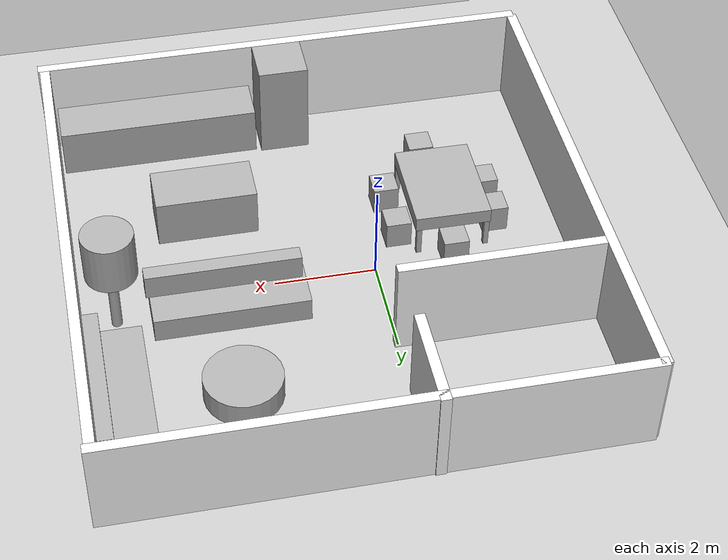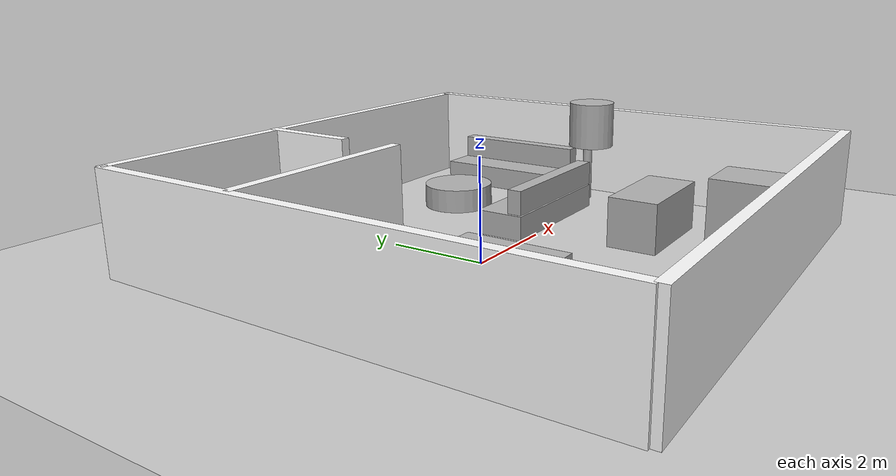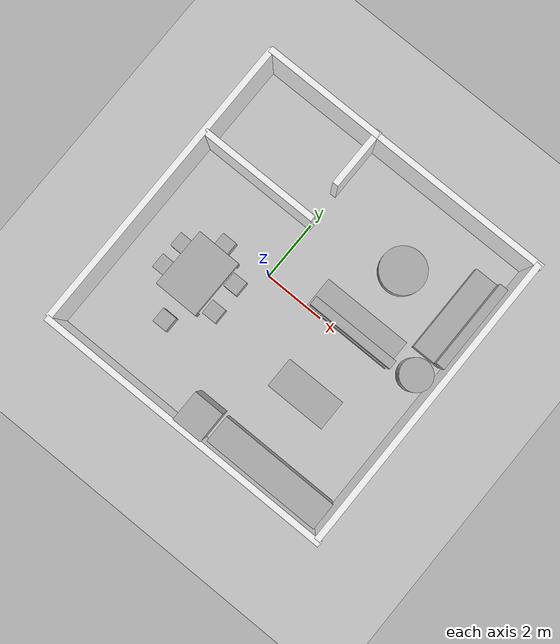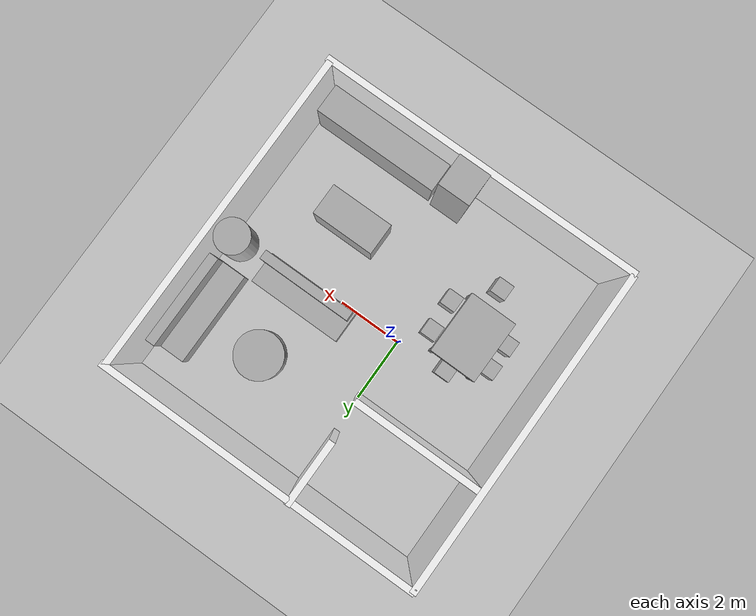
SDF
<sdf version='1.10'>
  <world name='map'>

    <physics name='1ms' type='ignored'>
      <max_step_size>0.001</max_step_size>
      <real_time_factor>1</real_time_factor>
      <real_time_update_rate>1000</real_time_update_rate>
    </physics>
    <plugin filename="gz-sim-sensors-system" name="gz::sim::systems::Sensors">
      <render_engine>ogre2</render_engine>
    </plugin>
    <plugin name='gz::sim::systems::Physics' filename='gz-sim-physics-system'/>
    <plugin name='gz::sim::systems::UserCommands' filename='gz-sim-user-commands-system'/>
    <plugin name='gz::sim::systems::SceneBroadcaster' filename='gz-sim-scene-broadcaster-system'/>
    <gravity>0 0 -9.8000000000000007</gravity>
    <magnetic_field>5.5644999999999998e-06 2.2875799999999999e-05 -4.2388400000000002e-05</magnetic_field>
    <atmosphere type='adiabatic'/>
    <scene>
      <ambient>0.400000006 0.400000006 0.400000006 1</ambient>
      <background>0.699999988 0.699999988 0.699999988 1</background>
      <shadows>true</shadows>
    </scene>
    <model name='ground_plane'>
      <static>true</static>
      <link name='link'>
        <collision name='collision'>
          <geometry>
            <plane>
              <normal>0 0 1</normal>
              <size>100 100</size>
            </plane>
          </geometry>
          <surface>
            <friction>
              <ode/>
            </friction>
            <bounce/>
            <contact/>
          </surface>
        </collision>
        <visual name='visual'>
          <geometry>
            <plane>
              <normal>0 0 1</normal>
              <size>100 100</size>
            </plane>
          </geometry>
          <material>
            <ambient>0.800000012 0.800000012 0.800000012 1</ambient>
            <diffuse>0.800000012 0.800000012 0.800000012 1</diffuse>
            <specular>0.800000012 0.800000012 0.800000012 1</specular>
          </material>
        </visual>
        <pose>0 0 0 0 0 0</pose>
        <inertial>
          <pose>0 0 0 0 0 0</pose>
          <mass>1</mass>
          <inertia>
            <ixx>1</ixx>
            <ixy>0</ixy>
            <ixz>0</ixz>
            <iyy>1</iyy>
            <iyz>0</iyz>
            <izz>1</izz>
          </inertia>
        </inertial>
        <enable_wind>false</enable_wind>
      </link>
      <pose>0 0 0 0 0 0</pose>
      <self_collide>false</self_collide>
    </model>
    <model name='wall_1'>
      <static>true</static>
      <link name='link'>
        <collision name='collision'>
          <geometry>
            <box>
              <size>10 0.20000000000000001 2</size>
            </box>
          </geometry>
          <surface>
            <friction>
              <ode/>
            </friction>
            <bounce/>
            <contact/>
          </surface>
        </collision>
        <visual name='visual'>
          <geometry>
            <box>
              <size>10 0.20000000000000001 2</size>
            </box>
          </geometry>
          <material>
            <ambient>1 1 1 1</ambient>
          </material>
        </visual>
        <pose>0 0 0 0 0 0</pose>
        <enable_wind>false</enable_wind>
        <inertial>
          <pose>0 0 0 0 0 0</pose>
          <mass>1</mass>
          <inertia>
            <ixx>1</ixx>
            <ixy>0</ixy>
            <ixz>0</ixz>
            <iyy>1</iyy>
            <iyz>0</iyz>
            <izz>1</izz>
          </inertia>
        </inertial>
      </link>
      <pose>1 5 1 0 0 0</pose>
      <self_collide>false</self_collide>
    </model>
    <model name='wall_2'>
      <static>true</static>
      <link name='link'>
        <collision name='collision'>
          <geometry>
            <box>
              <size>10 0.20000000000000001 2</size>
            </box>
          </geometry>
          <surface>
            <friction>
              <ode/>
            </friction>
            <bounce/>
            <contact/>
          </surface>
        </collision>
        <visual name='visual'>
          <geometry>
            <box>
              <size>10 0.20000000000000001 2</size>
            </box>
          </geometry>
          <material>
            <ambient>1 1 1 1</ambient>
          </material>
        </visual>
        <pose>0 0 0 0 0 0</pose>
        <enable_wind>false</enable_wind>
        <inertial>
          <pose>0 0 0 0 0 0</pose>
          <mass>1</mass>
          <inertia>
            <ixx>1</ixx>
            <ixy>0</ixy>
            <ixz>0</ixz>
            <iyy>1</iyy>
            <iyz>0</iyz>
            <izz>1</izz>
          </inertia>
        </inertial>
      </link>
      <pose>1 -5 1 0 0 0</pose>
      <self_collide>false</self_collide>
    </model>
    <model name='wall_3'>
      <static>true</static>
      <link name='link'>
        <collision name='collision'>
          <geometry>
            <box>
              <size>10 0.20000000000000001 2</size>
            </box>
          </geometry>
          <surface>
            <friction>
              <ode/>
            </friction>
            <bounce/>
            <contact/>
          </surface>
        </collision>
        <visual name='visual'>
          <geometry>
            <box>
              <size>10 0.20000000000000001 2</size>
            </box>
          </geometry>
          <material>
            <ambient>1 1 1 1</ambient>
          </material>
        </visual>
        <pose>0 0 0 0 0 0</pose>
        <enable_wind>false</enable_wind>
        <inertial>
          <pose>0 0 0 0 0 0</pose>
          <mass>1</mass>
          <inertia>
            <ixx>1</ixx>
            <ixy>0</ixy>
            <ixz>0</ixz>
            <iyy>1</iyy>
            <iyz>0</iyz>
            <izz>1</izz>
          </inertia>
        </inertial>
      </link>
      <pose>-3.9541664123535156 0.043944545090198517 1 0 0 1.5708000357176291</pose>
      <self_collide>false</self_collide>
    </model>
    <model name='wall_4'>
      <static>true</static>
      <link name='link'>
        <collision name='collision'>
          <geometry>
            <box>
              <size>10 0.20000000000000001 2</size>
            </box>
          </geometry>
          <surface>
            <friction>
              <ode/>
            </friction>
            <bounce/>
            <contact/>
          </surface>
        </collision>
        <visual name='visual'>
          <geometry>
            <box>
              <size>10 0.20000000000000001 2</size>
            </box>
          </geometry>
          <material>
            <ambient>1 1 1 1</ambient>
          </material>
        </visual>
        <pose>0 0 0 0 0 0</pose>
        <enable_wind>false</enable_wind>
        <inertial>
          <pose>0 0 0 0 0 0</pose>
          <mass>1</mass>
          <inertia>
            <ixx>1</ixx>
            <ixy>0</ixy>
            <ixz>0</ixz>
            <iyy>1</iyy>
            <iyz>0</iyz>
            <izz>1</izz>
          </inertia>
        </inertial>
      </link>
      <pose>5.8648457527160645 0.034658607095479965 1 0 0 1.5708000357176291</pose>
      <self_collide>false</self_collide>
    </model>
    <model name='wall_inside'>
      <static>true</static>
      <link name='link'>
        <collision name='collision'>
          <geometry>
            <box>
              <size>4 0.20000000000000001 2</size>
            </box>
          </geometry>
          <surface>
            <friction>
              <ode/>
            </friction>
            <bounce/>
            <contact/>
          </surface>
        </collision>
        <visual name='visual'>
          <geometry>
            <box>
              <size>4 0.20000000000000001 2</size>
            </box>
          </geometry>
          <material>
            <ambient>1 1 1 1</ambient>
          </material>
        </visual>
        <pose>0 0 0 0 0 0</pose>
        <enable_wind>false</enable_wind>
        <inertial>
          <pose>0 0 0 0 0 0</pose>
          <mass>1</mass>
          <inertia>
            <ixx>1</ixx>
            <ixy>0</ixy>
            <ixz>0</ixz>
            <iyy>1</iyy>
            <iyz>0</iyz>
            <izz>1</izz>
          </inertia>
        </inertial>
      </link>
      <pose>-1.9292542934417725 1.960669994354248 1 0 0 0</pose>
      <self_collide>false</self_collide>
    </model>
    <model name='coffeetable'>
      <static>true</static>
      <pose>3.0216946601867676 2.6442599296569824 0.25 0 0 0</pose>
      <link name='coffeetable_link'>
        <collision name='coffeetable_collision'>
          <geometry>
            <cylinder>
              <radius>0.75</radius>
              <length>0.5</length>
            </cylinder>
          </geometry>
          <surface>
            <friction>
              <ode/>
            </friction>
            <bounce/>
            <contact/>
          </surface>
        </collision>
        <visual name='coffeetable_visual'>
          <geometry>
            <cylinder>
              <radius>0.75</radius>
              <length>0.5</length>
            </cylinder>
          </geometry>
          <material>
            <ambient>0.300000012 0.300000012 0.300000012 1</ambient>
            <diffuse>0.699999988 0.699999988 0.699999988 1</diffuse>
            <specular>1 1 1 1</specular>
          </material>
        </visual>
        <enable_wind>false</enable_wind>
        <pose>0 0 0 0 0 0</pose>
        <inertial>
          <pose>0 0 0 0 0 0</pose>
          <mass>1</mass>
          <inertia>
            <ixx>1</ixx>
            <ixy>0</ixy>
            <ixz>0</ixz>
            <iyy>1</iyy>
            <iyz>0</iyz>
            <izz>1</izz>
          </inertia>
        </inertial>
      </link>
      <static>false</static>
      <self_collide>false</self_collide>
    </model>
    <model name='couch1'>
      <link name='couch1_link'>
        <collision name='couch1_collision'>
          <geometry>
            <box>
              <size>3 1 0.5</size>
            </box>
          </geometry>
          <surface>
            <friction>
              <ode/>
            </friction>
            <bounce/>
            <contact/>
          </surface>
        </collision>
        <visual name='couch1_visual'>
          <geometry>
            <box>
              <size>3 1 0.5</size>
            </box>
          </geometry>
          <material>
            <ambient>0.300000012 0.300000012 0.300000012 1</ambient>
            <diffuse>0.699999988 0.699999988 0.699999988 1</diffuse>
            <specular>1 1 1 1</specular>
          </material>
        </visual>
        <pose>5.1793298733949156 2.5704801095370766 0.25 0 0 1.57079632679</pose>
        <enable_wind>false</enable_wind>
        <inertial>
          <pose>0 0 0 0 0 0</pose>
          <mass>1</mass>
          <inertia>
            <ixx>1</ixx>
            <ixy>0</ixy>
            <ixz>0</ixz>
            <iyy>1</iyy>
            <iyz>0</iyz>
            <izz>1</izz>
          </inertia>
        </inertial>
      </link>
      <self_collide>false</self_collide>
      <static>true</static>
      <pose>0 -9.3258734068513149e-15 0 0 0 0</pose>
    </model>
    <model name='couch1_back'>
      <pose>5.6046700477600098 2.5704801082611084 0.75 0 0 1.5708000357176291</pose>
      <link name='couch1_back_link'>
        <collision name='couch1_back_collision'>
          <geometry>
            <box>
              <size>3 0.29999999999999999 0.5</size>
            </box>
          </geometry>
          <surface>
            <friction>
              <ode/>
            </friction>
            <bounce/>
            <contact/>
          </surface>
        </collision>
        <visual name='couch1_back_visual'>
          <geometry>
            <box>
              <size>3 0.29999999999999999 0.5</size>
            </box>
          </geometry>
          <material>
            <ambient>0.300000012 0.300000012 0.300000012 1</ambient>
            <diffuse>0.699999988 0.699999988 0.699999988 1</diffuse>
            <specular>1 1 1 1</specular>
          </material>
        </visual>
        <enable_wind>false</enable_wind>
        <inertial>
          <pose>0 0 0 0 0 0</pose>
          <mass>1</mass>
          <inertia>
            <ixx>1</ixx>
            <ixy>0</ixy>
            <ixz>0</ixz>
            <iyy>1</iyy>
            <iyz>0</iyz>
            <izz>1</izz>
          </inertia>
        </inertial>
        <pose>0 0 0 0 0 0</pose>
      </link>
      <static>true</static>
      <self_collide>false</self_collide>
    </model>
    <model name='couch2'>
      <link name='couch2_link'>
        <collision name='couch2_collision'>
          <geometry>
            <box>
              <size>3 1 0.5</size>
            </box>
          </geometry>
          <surface>
            <friction>
              <ode/>
            </friction>
            <bounce/>
            <contact/>
          </surface>
        </collision>
        <visual name='couch2_visual'>
          <geometry>
            <box>
              <size>3 1 0.5</size>
            </box>
          </geometry>
          <material>
            <ambient>0.300000012 0.300000012 0.300000012 1</ambient>
            <diffuse>0.699999988 0.699999988 0.699999988 1</diffuse>
            <specular>1 1 1 1</specular>
          </material>
        </visual>
        <pose>5.1793298733949156 2.5704801095370766 0.25 0 0 0</pose>
        <enable_wind>false</enable_wind>
        <inertial>
          <pose>0 0 0 0 0 0</pose>
          <mass>1</mass>
          <inertia>
            <ixx>1</ixx>
            <ixy>0</ixy>
            <ixz>0</ixz>
            <iyy>1</iyy>
            <iyz>0</iyz>
            <izz>1</izz>
          </inertia>
        </inertial>
      </link>
      <self_collide>false</self_collide>
      <static>true</static>
      <pose>-2.2235250473022461 -2.0321700572967529 0 0 0 0</pose>
    </model>
    <model name='couch2_back'>
      <pose>3.0210399627685547 0.23112596571445465 0.75 0 0 0</pose>
      <link name='couch2_back_link'>
        <collision name='couch2_back_collision'>
          <geometry>
            <box>
              <size>3 0.29999999999999999 0.5</size>
            </box>
          </geometry>
          <surface>
            <friction>
              <ode/>
            </friction>
            <bounce/>
            <contact/>
          </surface>
        </collision>
        <visual name='couch2_back_visual'>
          <geometry>
            <box>
              <size>3 0.29999999999999999 0.5</size>
            </box>
          </geometry>
          <material>
            <ambient>0.300000012 0.300000012 0.300000012 1</ambient>
            <diffuse>0.699999988 0.699999988 0.699999988 1</diffuse>
            <specular>1 1 1 1</specular>
          </material>
        </visual>
        <enable_wind>false</enable_wind>
        <inertial>
          <pose>0 0 0 0 0 0</pose>
          <mass>1</mass>
          <inertia>
            <ixx>1</ixx>
            <ixy>0</ixy>
            <ixz>0</ixz>
            <iyy>1</iyy>
            <iyz>0</iyz>
            <izz>1</izz>
          </inertia>
        </inertial>
        <pose>0 0 0 0 0 0</pose>
      </link>
      <static>true</static>
      <self_collide>false</self_collide>
    </model>
    <model name='fridge'>
      <pose>1.1076207160949707 -4.4306488037109375 1 0 0 -1.5708000357176291</pose>
      <link name='fridge_link'>
        <collision name='fridge_collision'>
          <geometry>
            <box>
              <size>1 1 2</size>
            </box>
          </geometry>
          <surface>
            <friction>
              <ode/>
            </friction>
            <bounce/>
            <contact/>
          </surface>
        </collision>
        <visual name='fridge_visual'>
          <geometry>
            <box>
              <size>1 1 2</size>
            </box>
          </geometry>
          <material>
            <ambient>0.300000012 0.300000012 0.300000012 1</ambient>
            <diffuse>0.699999988 0.699999988 0.699999988 1</diffuse>
            <specular>1 1 1 1</specular>
          </material>
        </visual>
        <enable_wind>false</enable_wind>
        <pose>0 0 0 0 0 0</pose>
        <inertial>
          <pose>0 0 0 0 0 0</pose>
          <mass>1</mass>
          <inertia>
            <ixx>1</ixx>
            <ixy>0</ixy>
            <ixz>0</ixz>
            <iyy>1</iyy>
            <iyz>0</iyz>
            <izz>1</izz>
          </inertia>
        </inertial>
      </link>
      <static>true</static>
      <self_collide>false</self_collide>
    </model>
    <model name='kitchen'>
      <pose>3.7086288928985596 -4.4902901649475098 0.5 0 0 0</pose>
      <link name='kitchen_link'>
        <inertial>
          <inertia>
            <ixx>0.16666</ixx>
            <ixy>0</ixy>
            <ixz>0</ixz>
            <iyy>0.16666</iyy>
            <iyz>0</iyz>
            <izz>0.16666</izz>
          </inertia>
          <mass>1</mass>
          <pose>0 0 0 0 0 0</pose>
        </inertial>
        <collision name='kitchen_collision'>
          <geometry>
            <box>
              <size>3 1 1</size>
            </box>
          </geometry>
          <surface>
            <friction>
              <ode/>
            </friction>
            <bounce/>
            <contact/>
          </surface>
        </collision>
        <visual name='kitchen_visual'>
          <geometry>
            <box>
              <size>4 1 1</size>
            </box>
          </geometry>
          <material>
            <ambient>0.300000012 0.300000012 0.300000012 1</ambient>
            <diffuse>0.699999988 0.699999988 0.699999988 1</diffuse>
            <specular>1 1 1 1</specular>
          </material>
        </visual>
        <pose>0 0 0 0 0 0</pose>
        <enable_wind>false</enable_wind>
      </link>
      <static>false</static>
      <self_collide>false</self_collide>
    </model>
    <model name='table'>
      <pose>-1.6221240758895874 -1.314261794090271 0.75 0 0 -1.5792599449838041</pose>
      <link name='table_link'>
        <inertial>
          <inertia>
            <ixx>0.16666</ixx>
            <ixy>0</ixy>
            <ixz>0</ixz>
            <iyy>0.16666</iyy>
            <iyz>0</iyz>
            <izz>0.16666</izz>
          </inertia>
          <mass>1</mass>
          <pose>0 0 0 0 0 0</pose>
        </inertial>
        <collision name='table_collision'>
          <geometry>
            <box>
              <size>2 1.5 0.29999999999999999</size>
            </box>
          </geometry>
          <surface>
            <friction>
              <ode/>
            </friction>
            <bounce/>
            <contact/>
          </surface>
        </collision>
        <visual name='table_visual'>
          <geometry>
            <box>
              <size>2 1.5 0.29999999999999999</size>
            </box>
          </geometry>
          <material>
            <ambient>0.300000012 0.300000012 0.300000012 1</ambient>
            <diffuse>0.699999988 0.699999988 0.699999988 1</diffuse>
            <specular>1 1 1 1</specular>
          </material>
        </visual>
        <pose>0 0 0 0 0 0</pose>
        <enable_wind>false</enable_wind>
      </link>
      <static>true</static>
      <self_collide>false</self_collide>
    </model>
    <model name='table_leg1'>
      <pose>-0.93916487693786621 -2.2674500942230225 0.34999999403953552 0 0 0</pose>
      <link name='table_leg1_link'>
        <inertial>
          <inertia>
            <ixx>0.16666</ixx>
            <ixy>0</ixy>
            <ixz>0</ixz>
            <iyy>0.16666</iyy>
            <iyz>0</iyz>
            <izz>0.16666</izz>
          </inertia>
          <mass>1</mass>
          <pose>0 0 0 0 0 0</pose>
        </inertial>
        <collision name='table_leg1_collision'>
          <geometry>
            <box>
              <size>0.10000000000000001 0.10000000000000001 0.69999999999999996</size>
            </box>
          </geometry>
          <surface>
            <friction>
              <ode/>
            </friction>
            <bounce/>
            <contact/>
          </surface>
        </collision>
        <visual name='table_leg1_visual'>
          <geometry>
            <box>
              <size>0.10000000000000001 0.10000000000000001 0.69999999999999996</size>
            </box>
          </geometry>
          <material>
            <ambient>0.300000012 0.300000012 0.300000012 1</ambient>
            <diffuse>0.699999988 0.699999988 0.699999988 1</diffuse>
            <specular>1 1 1 1</specular>
          </material>
        </visual>
        <pose>0 0 0 0 0 0</pose>
        <enable_wind>false</enable_wind>
      </link>
      <static>true</static>
      <self_collide>false</self_collide>
    </model>
    <model name='table_leg2'>
      <pose>-2.3141500949859619 -2.2596817016601562 0.34999999403953552 0 0 0</pose>
      <link name='table_leg2_link'>
        <inertial>
          <inertia>
            <ixx>0.16666</ixx>
            <ixy>0</ixy>
            <ixz>0</ixz>
            <iyy>0.16666</iyy>
            <iyz>0</iyz>
            <izz>0.16666</izz>
          </inertia>
          <mass>1</mass>
          <pose>0 0 0 0 0 0</pose>
        </inertial>
        <collision name='table_leg2_collision'>
          <geometry>
            <box>
              <size>0.10000000000000001 0.10000000000000001 0.69999999999999996</size>
            </box>
          </geometry>
          <surface>
            <friction>
              <ode/>
            </friction>
            <bounce/>
            <contact/>
          </surface>
        </collision>
        <visual name='table_leg2_visual'>
          <geometry>
            <box>
              <size>0.10000000000000001 0.10000000000000001 0.69999999999999996</size>
            </box>
          </geometry>
          <material>
            <ambient>0.300000012 0.300000012 0.300000012 1</ambient>
            <diffuse>0.699999988 0.699999988 0.699999988 1</diffuse>
            <specular>1 1 1 1</specular>
          </material>
        </visual>
        <pose>0 0 0 0 0 0</pose>
        <enable_wind>false</enable_wind>
      </link>
      <static>true</static>
      <self_collide>false</self_collide>
    </model>
    <model name='table_leg3'>
      <pose>-2.2979450225830078 -0.37195500731468201 0.34999999403953552 0 0 0</pose>
      <link name='table_leg2_link'>
        <inertial>
          <inertia>
            <ixx>0.16666</ixx>
            <ixy>0</ixy>
            <ixz>0</ixz>
            <iyy>0.16666</iyy>
            <iyz>0</iyz>
            <izz>0.16666</izz>
          </inertia>
          <mass>1</mass>
          <pose>0 0 0 0 0 0</pose>
        </inertial>
        <collision name='table_leg3_collision'>
          <geometry>
            <box>
              <size>0.10000000000000001 0.10000000000000001 0.69999999999999996</size>
            </box>
          </geometry>
          <surface>
            <friction>
              <ode/>
            </friction>
            <bounce/>
            <contact/>
          </surface>
        </collision>
        <visual name='table_leg3_visual'>
          <geometry>
            <box>
              <size>0.10000000000000001 0.10000000000000001 0.69999999999999996</size>
            </box>
          </geometry>
          <material>
            <ambient>0.300000012 0.300000012 0.300000012 1</ambient>
            <diffuse>0.699999988 0.699999988 0.699999988 1</diffuse>
            <specular>1 1 1 1</specular>
          </material>
        </visual>
        <pose>0 0 0 0 0 0</pose>
        <enable_wind>false</enable_wind>
      </link>
      <static>true</static>
      <self_collide>false</self_collide>
    </model>
    <model name='table_leg4'>
      <pose>-0.93916499614715576 -0.37384605407714844 0.34999999403953552 0 0 0</pose>
      <link name='table_leg4_link'>
        <inertial>
          <inertia>
            <ixx>0.16666</ixx>
            <ixy>0</ixy>
            <ixz>0</ixz>
            <iyy>0.16666</iyy>
            <iyz>0</iyz>
            <izz>0.16666</izz>
          </inertia>
          <mass>1</mass>
          <pose>0 0 0 0 0 0</pose>
        </inertial>
        <collision name='table_leg4_collision'>
          <geometry>
            <box>
              <size>0.10000000000000001 0.10000000000000001 0.69999999999999996</size>
            </box>
          </geometry>
          <surface>
            <friction>
              <ode/>
            </friction>
            <bounce/>
            <contact/>
          </surface>
        </collision>
        <visual name='table_leg4_visual'>
          <geometry>
            <box>
              <size>0.10000000000000001 0.10000000000000001 0.69999999999999996</size>
            </box>
          </geometry>
          <material>
            <ambient>0.300000012 0.300000012 0.300000012 1</ambient>
            <diffuse>0.699999988 0.699999988 0.699999988 1</diffuse>
            <specular>1 1 1 1</specular>
          </material>
        </visual>
        <pose>0 0 0 0 0 0</pose>
        <enable_wind>false</enable_wind>
      </link>
      <static>true</static>
      <self_collide>false</self_collide>
    </model>
    <model name='lamp'>
      <pose>5.1087003084594897 0.43277785242222655 0.5 0 0 0</pose>
      <link name='lamp_link'>
        <inertial>
          <inertia>
            <ixx>0.14580000000000001</ixx>
            <ixy>0</ixy>
            <ixz>0</ixz>
            <iyy>0.14580000000000001</iyy>
            <iyz>0</iyz>
            <izz>0.125</izz>
          </inertia>
          <mass>1</mass>
          <pose>0 0 0 0 0 0</pose>
        </inertial>
        <collision name='lamp_collision'>
          <geometry>
            <cylinder>
              <radius>0.10000000000000001</radius>
              <length>1.5</length>
            </cylinder>
          </geometry>
          <surface>
            <friction>
              <ode/>
            </friction>
            <bounce/>
            <contact/>
          </surface>
        </collision>
        <visual name='lamp_visual'>
          <geometry>
            <cylinder>
              <radius>0.10000000000000001</radius>
              <length>1.5</length>
            </cylinder>
          </geometry>
          <material>
            <ambient>0.300000012 0.300000012 0.300000012 1</ambient>
            <diffuse>0.699999988 0.699999988 0.699999988 1</diffuse>
            <specular>1 1 1 1</specular>
          </material>
        </visual>
        <pose>0 0 0 0 0 0</pose>
        <enable_wind>false</enable_wind>
      </link>
      <static>false</static>
      <self_collide>false</self_collide>
    </model>
    <model name='lampshade'>
      <pose>5.1093020439147949 0.35391399264335632 1.7467499971389771 0 0 0</pose>
      <link name='lampshade_link'>
        <inertial>
          <inertia>
            <ixx>0.14580000000000001</ixx>
            <ixy>0</ixy>
            <ixz>0</ixz>
            <iyy>0.14580000000000001</iyy>
            <iyz>0</iyz>
            <izz>0.125</izz>
          </inertia>
          <mass>1</mass>
          <pose>0 0 0 0 0 0</pose>
        </inertial>
        <collision name='lampshade_collission'>
          <geometry>
            <cylinder>
              <radius>0.5</radius>
              <length>1</length>
            </cylinder>
          </geometry>
          <surface>
            <friction>
              <ode/>
            </friction>
            <bounce/>
            <contact/>
          </surface>
        </collision>
        <visual name='lampshade_visual'>
          <geometry>
            <cylinder>
              <radius>0.5</radius>
              <length>1</length>
            </cylinder>
          </geometry>
          <material>
            <ambient>0.300000012 0.300000012 0.300000012 1</ambient>
            <diffuse>0.699999988 0.699999988 0.699999988 1</diffuse>
            <specular>1 1 1 1</specular>
          </material>
        </visual>
        <pose>0 0 0 0 0 0</pose>
        <enable_wind>false</enable_wind>
      </link>
      <static>true</static>
      <self_collide>false</self_collide>
    </model>
    <model name='wall_inside_1'>
      <static>true</static>
      <link name='link'>
        <collision name='collision'>
          <geometry>
            <box>
              <size>2 0.20000000000000001 2</size>
            </box>
          </geometry>
          <surface>
            <friction>
              <ode/>
            </friction>
            <bounce/>
            <contact/>
          </surface>
        </collision>
        <visual name='visual'>
          <geometry>
            <box>
              <size>2 0.20000000000000001 2</size>
            </box>
          </geometry>
          <material>
            <ambient>1 1 1 1</ambient>
          </material>
        </visual>
        <pose>0 0 0 0 0 0</pose>
        <enable_wind>false</enable_wind>
        <inertial>
          <pose>0 0 0 0 0 0</pose>
          <mass>1</mass>
          <inertia>
            <ixx>1</ixx>
            <ixy>0</ixy>
            <ixz>0</ixz>
            <iyy>1</iyy>
            <iyz>0</iyz>
            <izz>1</izz>
          </inertia>
        </inertial>
      </link>
      <pose>-0.065118297934532166 4.1258358955383301 1 0 0 1.5708000357176291</pose>
      <self_collide>false</self_collide>
    </model>
    <model name='kitchen2_island'>
      <pose>3.0702543258666992 -2.033852100372314 0.5 0 0 1.5707999672671702</pose>
      <link name='kitchen2_link'>
        <inertial>
          <inertia>
            <ixx>0.16666</ixx>
            <ixy>0</ixy>
            <ixz>0</ixz>
            <iyy>0.16666</iyy>
            <iyz>0</iyz>
            <izz>0.16666</izz>
          </inertia>
          <mass>1</mass>
          <pose>0 0 0 0 0 0</pose>
        </inertial>
        <collision name='kitchen2_collision'>
          <geometry>
            <box>
              <size>1 2 1</size>
            </box>
          </geometry>
          <surface>
            <friction>
              <ode/>
            </friction>
            <bounce/>
            <contact/>
          </surface>
        </collision>
        <visual name='kitchen2_visual'>
          <geometry>
            <box>
              <size>1 2 1</size>
            </box>
          </geometry>
          <material>
            <ambient>0.300000012 0.300000012 0.300000012 1</ambient>
            <diffuse>0.699999988 0.699999988 0.699999988 1</diffuse>
            <specular>1 1 1 1</specular>
          </material>
        </visual>
        <pose>0 0 0 0 0 0</pose>
        <enable_wind>false</enable_wind>
      </link>
      <static>false</static>
      <self_collide>false</self_collide>
    </model>
    <model name='chair1'>
      <pose>-0.5965610146522522 -0.84801393747329712 0.20000000298023224 0 0 0</pose>
      <link name='chair1_link'>
        <inertial>
          <inertia>
            <ixx>0.16666</ixx>
            <ixy>0</ixy>
            <ixz>0</ixz>
            <iyy>0.16666</iyy>
            <iyz>0</iyz>
            <izz>0.16666</izz>
          </inertia>
          <mass>1</mass>
          <pose>0 0 0 0 0 0</pose>
        </inertial>
        <collision name='chair1_collision'>
          <geometry>
            <box>
              <size>0.5 0.5 0.69999999999999996</size>
            </box>
          </geometry>
          <surface>
            <friction>
              <ode/>
            </friction>
            <bounce/>
            <contact/>
          </surface>
        </collision>
        <visual name='chair1_visual'>
          <geometry>
            <box>
              <size>0.5 0.5 0.69999999999999996</size>
            </box>
          </geometry>
          <material>
            <ambient>0.300000012 0.300000012 0.300000012 1</ambient>
            <diffuse>0.699999988 0.699999988 0.699999988 1</diffuse>
            <specular>1 1 1 1</specular>
          </material>
        </visual>
        <pose>0 0 0 0 0 0</pose>
        <enable_wind>false</enable_wind>
      </link>
      <static>false</static>
      <self_collide>false</self_collide>
    </model>
    <model name='chair1_1'>
      <pose>-0.56394512035163191 -1.8736725923560811 0.20000000298023224 0 0 0</pose>
      <link name='chair1_link'>
        <inertial>
          <inertia>
            <ixx>0.16666</ixx>
            <ixy>0</ixy>
            <ixz>0</ixz>
            <iyy>0.16666</iyy>
            <iyz>0</iyz>
            <izz>0.16666</izz>
          </inertia>
          <mass>1</mass>
          <pose>0 0 0 0 0 0</pose>
        </inertial>
        <collision name='chair1_collision'>
          <geometry>
            <box>
              <size>0.5 0.5 0.69999999999999996</size>
            </box>
          </geometry>
          <surface>
            <friction>
              <ode/>
            </friction>
            <bounce/>
            <contact/>
          </surface>
        </collision>
        <visual name='chair1_visual'>
          <geometry>
            <box>
              <size>0.5 0.5 0.69999999999999996</size>
            </box>
          </geometry>
          <material>
            <ambient>0.300000012 0.300000012 0.300000012 1</ambient>
            <diffuse>0.699999988 0.699999988 0.699999988 1</diffuse>
            <specular>1 1 1 1</specular>
          </material>
        </visual>
        <pose>0 0 0 0 0 0</pose>
        <enable_wind>false</enable_wind>
      </link>
      <static>false</static>
      <self_collide>false</self_collide>
    </model>
    <model name='chair1_2'>
      <pose>-2.5816013104629718 -0.91995375128812751 0.20000000298023224 0 0 0</pose>
      <link name='chair1_link'>
        <inertial>
          <inertia>
            <ixx>0.16666</ixx>
            <ixy>0</ixy>
            <ixz>0</ixz>
            <iyy>0.16666</iyy>
            <iyz>0</iyz>
            <izz>0.16666</izz>
          </inertia>
          <mass>1</mass>
          <pose>0 0 0 0 0 0</pose>
        </inertial>
        <collision name='chair1_collision'>
          <geometry>
            <box>
              <size>0.5 0.5 0.69999999999999996</size>
            </box>
          </geometry>
          <surface>
            <friction>
              <ode/>
            </friction>
            <bounce/>
            <contact/>
          </surface>
        </collision>
        <visual name='chair1_visual'>
          <geometry>
            <box>
              <size>0.5 0.5 0.69999999999999996</size>
            </box>
          </geometry>
          <material>
            <ambient>0.300000012 0.300000012 0.300000012 1</ambient>
            <diffuse>0.699999988 0.699999988 0.699999988 1</diffuse>
            <specular>1 1 1 1</specular>
          </material>
        </visual>
        <pose>0 0 0 0 0 0</pose>
        <enable_wind>false</enable_wind>
      </link>
      <static>false</static>
      <self_collide>false</self_collide>
    </model>
    <model name='chair1_3'>
      <pose>-2.5906242492262681 -1.7536944177642351 0.20000000298023224 0 0 0</pose>
      <link name='chair1_link'>
        <inertial>
          <inertia>
            <ixx>0.16666</ixx>
            <ixy>0</ixy>
            <ixz>0</ixz>
            <iyy>0.16666</iyy>
            <iyz>0</iyz>
            <izz>0.16666</izz>
          </inertia>
          <mass>1</mass>
          <pose>0 0 0 0 0 0</pose>
        </inertial>
        <collision name='chair1_collision'>
          <geometry>
            <box>
              <size>0.5 0.5 0.69999999999999996</size>
            </box>
          </geometry>
          <surface>
            <friction>
              <ode/>
            </friction>
            <bounce/>
            <contact/>
          </surface>
        </collision>
        <visual name='chair1_visual'>
          <geometry>
            <box>
              <size>0.5 0.5 0.69999999999999996</size>
            </box>
          </geometry>
          <material>
            <ambient>0.300000012 0.300000012 0.300000012 1</ambient>
            <diffuse>0.699999988 0.699999988 0.699999988 1</diffuse>
            <specular>1 1 1 1</specular>
          </material>
        </visual>
        <pose>0 0 0 0 0 0</pose>
        <enable_wind>false</enable_wind>
      </link>
      <static>false</static>
      <self_collide>false</self_collide>
    </model>
    <model name='chair1_4'>
      <pose>-1.545108349449805 -2.9881582112948859 0.20000000298023224 0 0 0</pose>
      <link name='chair1_link'>
        <inertial>
          <inertia>
            <ixx>0.16666</ixx>
            <ixy>0</ixy>
            <ixz>0</ixz>
            <iyy>0.16666</iyy>
            <iyz>0</iyz>
            <izz>0.16666</izz>
          </inertia>
          <mass>1</mass>
          <pose>0 0 0 0 0 0</pose>
        </inertial>
        <collision name='chair1_collision'>
          <geometry>
            <box>
              <size>0.5 0.5 0.69999999999999996</size>
            </box>
          </geometry>
          <surface>
            <friction>
              <ode/>
            </friction>
            <bounce/>
            <contact/>
          </surface>
        </collision>
        <visual name='chair1_visual'>
          <geometry>
            <box>
              <size>0.5 0.5 0.69999999999999996</size>
            </box>
          </geometry>
          <material>
            <ambient>0.300000012 0.300000012 0.300000012 1</ambient>
            <diffuse>0.699999988 0.699999988 0.699999988 1</diffuse>
            <specular>1 1 1 1</specular>
          </material>
        </visual>
        <pose>0 0 0 0 0 0</pose>
        <enable_wind>false</enable_wind>
      </link>
      <static>false</static>
      <self_collide>false</self_collide>
    </model>
    <model name='chair1_5'>
      <pose>-1.5903737309570103 -0.13855502291499278 0.20000000298023224 0 0 0</pose>
      <link name='chair1_link'>
        <inertial>
          <inertia>
            <ixx>0.16666</ixx>
            <ixy>0</ixy>
            <ixz>0</ixz>
            <iyy>0.16666</iyy>
            <iyz>0</iyz>
            <izz>0.16666</izz>
          </inertia>
          <mass>1</mass>
          <pose>0 0 0 0 0 0</pose>
        </inertial>
        <collision name='chair1_collision'>
          <geometry>
            <box>
              <size>0.5 0.5 0.69999999999999996</size>
            </box>
          </geometry>
          <surface>
            <friction>
              <ode/>
            </friction>
            <bounce/>
            <contact/>
          </surface>
        </collision>
        <visual name='chair1_visual'>
          <geometry>
            <box>
              <size>0.5 0.5 0.69999999999999996</size>
            </box>
          </geometry>
          <material>
            <ambient>0.300000012 0.300000012 0.300000012 1</ambient>
            <diffuse>0.699999988 0.699999988 0.699999988 1</diffuse>
            <specular>1 1 1 1</specular>
          </material>
        </visual>
        <pose>0 0 0 0 0 0</pose>
        <enable_wind>false</enable_wind>
      </link>
      <static>false</static>
      <self_collide>false</self_collide>
    </model>
    <light name='sun' type='directional'>
      <pose>0 0 10 0 0 1.57079632679</pose>
      <cast_shadows>true</cast_shadows>
      <intensity>1</intensity>
      <direction>-0.5 0.10000000000000001 -0.90000000000000002</direction>
      <diffuse>0.800000012 0.800000012 0.800000012 1</diffuse>
      <specular>0.200000003 0.200000003 0.200000003 1</specular>
      <attenuation>
        <range>10</range>
        <linear>1</linear>
        <constant>1</constant>
        <quadratic>0</quadratic>
      </attenuation>
      <spot>
        <inner_angle>0</inner_angle>
        <outer_angle>0</outer_angle>
        <falloff>0</falloff>
      </spot>
    </light>

  </world>
</sdf>
